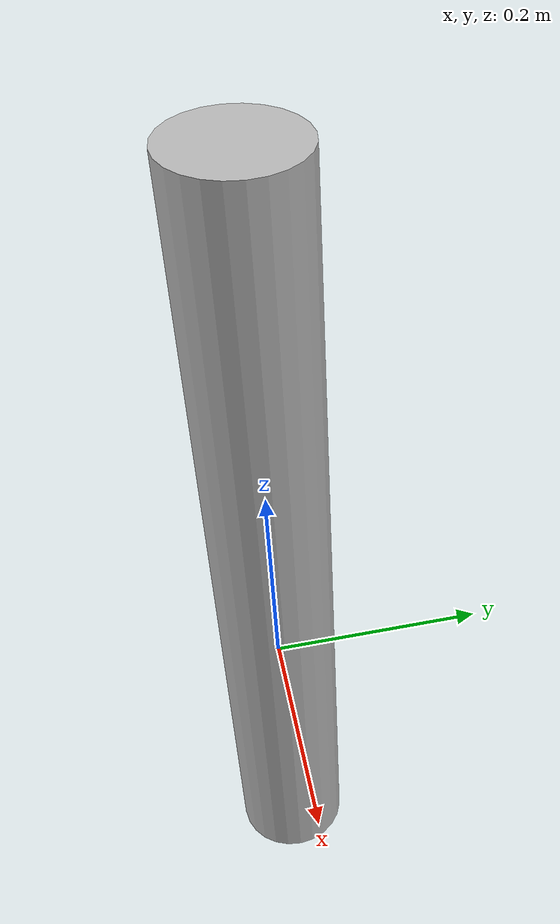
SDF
<?xml version="1.0" ?>
<sdf version="1.5">
  <model name="beer">
    <link name="link">
      <pose>0 0 0.115 0 0 1.57</pose>
      <inertial>
        <mass>0.190</mass>
        <inertia>
          <ixx>0.00058</ixx>
          <ixy>0</ixy>
          <ixz>0</ixz>
          <iyy>0.00058</iyy>
          <iyz>0</iyz>
          <izz>0.00019</izz>
        </inertia>
      </inertial>
      <collision name="collision">
        <geometry>
          <cylinder>
            <radius>0.055000</radius>
            <length>0.8</length>
          </cylinder>
        </geometry>
      </collision>
      <visual name="visual">
        <geometry>
          <cylinder>
            <radius>0.055000</radius>
            <length>0.8</length>
          </cylinder>
        </geometry>
      </visual>
    </link>
     <plugin name='usv_dynamics_plugin' filename='libusv_dynamics_plugin.so'>
      <bodyName>link</bodyName>
      <waterLevel>0</waterLevel>
      <waterDensity>997.8</waterDensity>
      <xDotU>0.0</xDotU>
      <yDotV>0.0</yDotV>
      <nDotR>0.0</nDotR>
      <xU>1.0</xU>
      <yV>1.0</yV>
      <zW>1.0</zW>
      <hullRadius>0.0381</hullRadius>
      <boatWidth>0.1</boatWidth>
      <boatLength>0.23</boatLength>
      <length_n>1.5</length_n>
      <wave_model>ocean_waves</wave_model>
    </plugin>
  </model>
</sdf>
